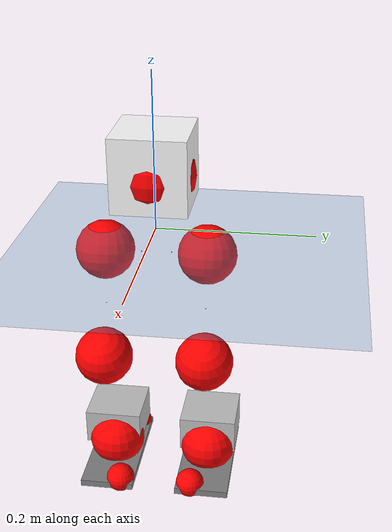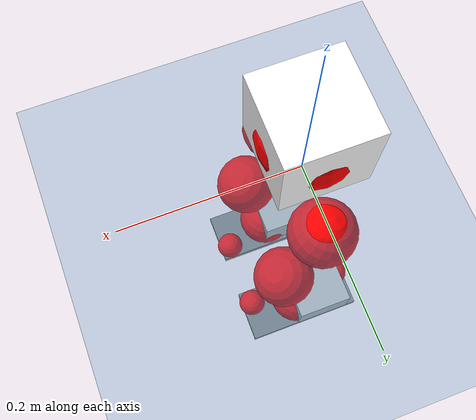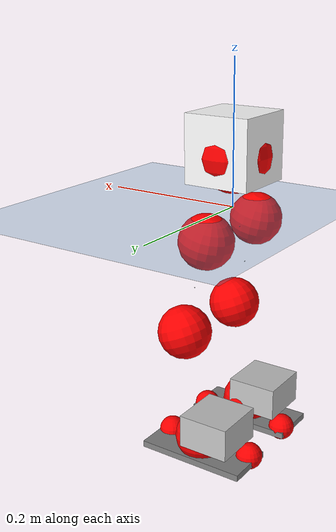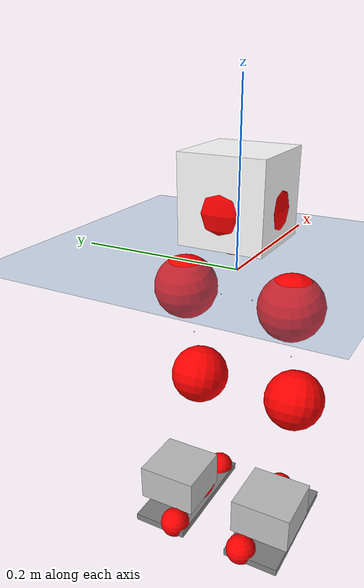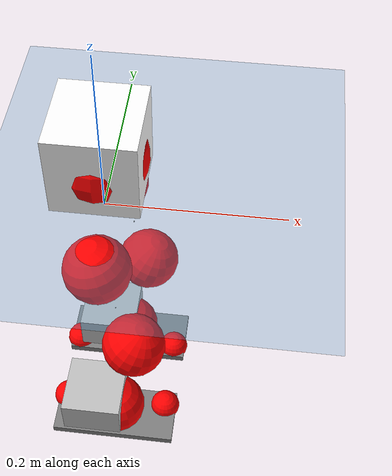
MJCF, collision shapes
<mujoco model="pi_12dof_release_v1">
  <compiler angle="radian" assetdir="assets" balanceinertia="true" inertiafromgeom="false"/>

  <option timestep="0.005" density="1.2" viscosity="2e-05"/>

  <size nkey="1"/>

  <visual>
    <quality shadowsize="8192"/>
    <map shadowclip="0.5"/>
  </visual>

  <default>
    <default class="/">
      <joint armature="0.01" damping="0.01" frictionloss="0.01"/>
      <geom contype="0" conaffinity="0" group="1" solref="-1000 -80"/>
      <site size="0.01 0.005 0.005" group="5"/>
      <general forcelimited="true" biastype="affine" gainprm="20" biasprm="0 -20 -0.5"/>
      <default class="foot">
        <geom size="0.0845 0.036 0.005" type="box" condim="6" group="4" priority="1" friction="0.9 0.2 0.2" solimp="0.015 1 0.005"/>
      </default>
      <default class="reward_collision_sphere">
        <geom group="5" rgba="1 0 0 1"/>
      </default>
    </default>
  </default>

  <asset>
    <texture type="skybox" colorspace="auto" name="//unnamed_texture_0" builtin="gradient" rgb1="0.95 0.95 0.95" rgb2="0.95 0.95 0.95" width="100" height="600"/>
    <texture type="2d" colorspace="auto" name="texplane" builtin="checker" rgb1="0.345 0.575 0.748" rgb2="0.345 0.575 0.748" markrgb="1 1 1" width="512" height="512"/>
    <material name="MatPlane" class="/" texture="texplane" texuniform="true" texrepeat="2 2" specular="0.9"/>
    <mesh name="baselink_1" class="/" file="baselink_1.STL"/>
    <mesh name="r_hip_pitch_link" class="/" file="r_hip_pitch_link.STL"/>
    <mesh name="r_hip_roll_link" class="/" file="r_hip_roll_link.STL"/>
    <mesh name="r_thigh_link" class="/" file="r_thigh_link.STL"/>
    <mesh name="r_calf_link" class="/" file="r_calf_link.STL"/>
    <mesh name="r_ankle_pitch_link" class="/" file="r_ankle_pitch_link.STL"/>
    <mesh name="r_ankle_roll_link" class="/" file="r_ankle_roll_link.STL"/>
    <mesh name="l_hip_pitch_link" class="/" file="l_hip_pitch_link.STL"/>
    <mesh name="l_hip_roll_link" class="/" file="l_hip_roll_link.STL"/>
    <mesh name="l_thigh_link" class="/" file="l_thigh_link.STL"/>
    <mesh name="l_calf_link" class="/" file="l_calf_link.STL"/>
    <mesh name="l_ankle_pitch_link" class="/" file="l_ankle_pitch_link.STL"/>
    <mesh name="l_ankle_roll_link" class="/" file="l_ankle_roll_link.STL"/>
  </asset>

  <worldbody>
    <geom name="floor" class="/" size="100 100 0.125" type="plane" group="0" material="MatPlane"/>
    <light name="toplight_shadow" class="/" pos="0 0 5" dir="0.0990148 0.0990148 -0.990148" type="directional" ambient="0.04 0.04 0.04" diffuse="0.55 0.55 0.55" specular="0.12 0.12 0.12"/>
    <light name="toplight_fill" class="/" pos="0 0 5" dir="0.0990148 0.0990148 -0.990148" type="directional" castshadow="false" ambient="0.04 0.04 0.04" diffuse="0.3 0.3 0.3" specular="0.08 0.08 0.08"/>
    <body name="trunk" pos="-0.000263999 -7.95426e-05 0.00086207" quat="1 1.51024e-05 5.93516e-05 -5.45821e-06">
      <inertial pos="0.00293003 -0.000625057 0.0408341" quat="0.695366 0.00966156 0.00993008 0.718522" mass="1.8266" diaginertia="0.00873468 0.00382695 0.0046712"/>
      <joint name="//unnamed_joint_0" type="free"/>
      <geom name="//unnamed_geom_1" class="/" type="mesh" density="0" rgba="1 1 1 1" mesh="baselink_1"/>
      <geom name="//unnamed_geom_2" class="/" size="0.047431 0.047431 0.047431" pos="0 0 0.0818797" type="box" rgba="1 1 1 1"/>
      <geom name="//unnamed_geom_3" class="reward_collision_sphere" size="0.0521741" pos="0 0 0.0716448"/>
      <site name="imu" class="/" pos="-0.00253793 -0.000497544 -0.00134038" size="0.00948619"/>
      <camera name="track" class="/" pos="0 -1.68598 0" quat="0.707107 0.707107 0 0" mode="trackcom"/>
      <camera name="ego_camera" class="/" pos="0.0734527 0 0.184229" quat="-0.5 -0.5 0.5 0.5"/>
      <body name="r_hip_pitch_link" pos="0.00108886 -0.0194202 -0.0335978" quat="0.992165 -0.000134128 -0.124936 0.000176135">
        <inertial pos="0.00093752 -0.0464447 0.000176417" quat="-0.023154 0.706435 -0.0279005 0.706849" mass="0.31649" diaginertia="9.78306e-05 4.16984e-05 9.36322e-05"/>
        <joint name="r_hip_pitch_joint" class="/" pos="0 0 0" axis="0.00115874 -0.999999 0.000396035" range="-1.74783 1.24786" armature="0.00958998" damping="0.00436065" frictionloss="0.00944109"/>
        <geom name="//unnamed_geom_4" class="/" type="mesh" density="0" rgba="0.75294 0.75294 0.75294 1" mesh="r_hip_pitch_link"/>
        <geom name="//unnamed_geom_5" class="/" size="0.00047431 0.00047431 0.00047431" type="box" rgba="0.75294 0.75294 0.75294 1"/>
        <body name="r_hip_roll_link" pos="0.000343739 -0.0463865 0.000432416" quat="1 -3.19574e-05 9.58945e-06 3.15437e-05">
          <inertial pos="-0.00179367 1.09369e-05 -0.0632603" quat="0.704692 -0.079867 -0.0818559 0.700236" mass="0.326862" diaginertia="0.000300292 0.000117905 0.000143091"/>
          <joint name="r_hip_roll_joint" class="/" pos="0 0 0" axis="-0.999997 0.00240541 -0.000708457" range="-0.116952 0.499637" armature="0.0096225" damping="0.00925468" frictionloss="0.00910624"/>
          <geom name="//unnamed_geom_6" class="/" type="mesh" density="0" rgba="0.75294 0.75294 0.75294 1" mesh="r_hip_roll_link"/>
          <geom name="//unnamed_geom_7" class="/" size="0.00047431 0.00047431 0.00047431" type="box" rgba="0.75294 0.75294 0.75294 1"/>
          <geom name="//unnamed_geom_8" class="reward_collision_sphere" size="0.0379448"/>
          <body name="r_thigh_link" pos="-0.00102815 0.00123436 -0.0707951" quat="1 0.000141665 -8.93526e-06 -0.000100328">
            <inertial pos="0.00013542 0.000949581 -0.0491262" quat="0.7378 0.675016 0.000664602 -0.00204617" mass="0.0972432" diaginertia="0.000113626 4.03939e-05 6.52671e-05"/>
            <joint name="r_thigh_joint" class="/" pos="0 0 0" axis="0.00270242 0.0013201 -0.999995" range="-0.301231 0.600293" armature="0.00965197" damping="0.00452373" frictionloss="0.00961451"/>
            <geom name="//unnamed_geom_9" class="/" type="mesh" density="0" rgba="0.75294 0.75294 0.75294 1" mesh="r_thigh_link"/>
            <geom name="//unnamed_geom_10" class="/" size="0.00047431 0.00047431 0.00047431" type="box" rgba="0.75294 0.75294 0.75294 1"/>
            <body name="r_calf_link" pos="0.000458834 -0.00229457 -0.0722226" quat="0.947641 -0.000168714 0.319338 0.000142718">
              <inertial pos="-0.000720964 -0.000741444 -0.0716967" quat="0.999985 -0.00222173 -0.000223455 0.00491384" mass="0.682979" diaginertia="0.00315308 0.00145875 0.000193854"/>
              <joint name="r_calf_joint" class="/" pos="0 0 0" axis="-0.00255152 -0.999993 0.00277586" range="-1.64437 0.632111" armature="0.00991403" damping="0.00364816" frictionloss="0.00976797"/>
              <geom name="//unnamed_geom_11" class="/" type="mesh" density="0" rgba="0.75294 0.75294 0.75294 1" mesh="r_calf_link"/>
              <geom name="//unnamed_geom_12" class="/" size="0.00047431 0.00047431 0.00047431" type="box" rgba="0.75294 0.75294 0.75294 1"/>
              <geom name="//unnamed_geom_13" class="reward_collision_sphere" size="0.0379448"/>
              <body name="r_ankle_pitch_link" pos="0.000559885 0.00166585 -0.142712" quat="0.98006 5.42592e-05 -0.198704 -6.22262e-05">
                <inertial pos="0.00476347 0.00324681 1.9367e-05" quat="0.00308317 0.706813 -0.00381591 0.707384" mass="0.151344" diaginertia="0.000278899 9.42398e-05 0.000134951"/>
                <joint name="r_ankle_pitch_joint" class="/" pos="0 0 0" axis="-0.000386669 -1 0.000129965" stiffness="0.00116116" range="-1.30774 0.510083" armature="0.00931542" damping="0.00507382" frictionloss="0.00951128"/>
                <geom name="//unnamed_geom_14" class="/" type="mesh" density="0" rgba="0.75294 0.75294 0.75294 1" mesh="r_ankle_pitch_link"/>
                <geom name="//unnamed_geom_15" class="/" size="0.0369962 0.0379448 0.0237155" type="box" rgba="0.75294 0.75294 0.75294 1"/>
                <body name="r_ankle_roll_link" pos="0.0742379 0.00302732 -0.000214348" quat="1 -8.39017e-05 -4.77884e-05 -8.26259e-05">
                  <inertial pos="-0.0231673 9.25871e-07 -0.0150073" quat="0.55953 0.433616 0.435153 0.556368" mass="0.441175" diaginertia="0.00101356 0.000442029 0.000316846"/>
                  <joint name="r_ankle_roll_joint" class="/" pos="0 0 0" axis="-1 -0.00023248 -0.000940941" range="-0.133366 0.145781" armature="0.00944043" damping="0.00376789" frictionloss="0.00930278"/>
                  <geom name="//unnamed_geom_16" class="/" type="mesh" density="0" rgba="0.75294 0.75294 0.75294 1" mesh="r_ankle_roll_link"/>
                  <geom name="//unnamed_geom_17" class="/" type="mesh" rgba="0.75294 0.75294 0.75294 1" mesh="r_ankle_roll_link"/>
                  <geom name="right_foot" class="foot" size="0.0789996 0.0353371 0.00458962" pos="-0.0499478 0 -0.0450339"/>
                  <geom name="//unnamed_geom_19" class="reward_collision_sphere" size="0.0379448" pos="-0.0489685 0 -0.0204699"/>
                  <geom name="//unnamed_geom_20" class="reward_collision_sphere" size="0.0189724" pos="0.0146905 0.0168598 -0.0409399"/>
                  <geom name="//unnamed_geom_21" class="reward_collision_sphere" size="0.0189724" pos="-0.117524 0.0168598 -0.0409399"/>
                  <site name="right_foot" class="foot" pos="-0.0499478 0 -0.0450339" size="0.00948619"/>
                </body>
              </body>
            </body>
          </body>
        </body>
      </body>
      <body name="l_hip_pitch_link" pos="-0.000221602 0.0190738 -0.0332477" quat="0.992182 -5.88921e-05 -0.124796 -9.31989e-05">
        <inertial pos="0.000274647 0.0450989 -0.000243317" quat="-0.0362719 0.707643 0.0317897 0.704922" mass="0.331212" diaginertia="0.000116117 4.51729e-05 0.000114115"/>
        <joint name="l_hip_pitch_joint" class="/" pos="0 0 0" axis="-0.00447004 0.999985 0.00326624" range="-1.24216 1.76324" armature="0.00957731" damping="0.00516736" frictionloss="0.00930722"/>
        <geom name="//unnamed_geom_22" class="/" type="mesh" density="0" rgba="0.75294 0.75294 0.75294 1" mesh="l_hip_pitch_link"/>
        <geom name="//unnamed_geom_23" class="/" size="0.00047431 0.00047431 0.00047431" type="box" rgba="0.75294 0.75294 0.75294 1"/>
        <body name="l_hip_roll_link" pos="0.0012247 0.0463825 7.2734e-05" quat="1 -1.46501e-05 -6.48775e-05 -4.20815e-05">
          <inertial pos="-0.00129396 -0.000656691 -0.0631199" quat="0.698496 -0.0747992 -0.0771766 0.707497" mass="0.33138" diaginertia="0.000300343 0.000119367 0.000144803"/>
          <joint name="l_hip_roll_joint" class="/" pos="0 0 0" axis="-0.999995 0.00100746 -0.00307406" range="-0.491715 0.0990353" armature="0.00957691" damping="0.00844374" frictionloss="0.00961258"/>
          <geom name="//unnamed_geom_24" class="/" type="mesh" density="0" rgba="0.75294 0.75294 0.75294 1" mesh="l_hip_roll_link"/>
          <geom name="//unnamed_geom_25" class="/" size="0.00047431 0.00047431 0.00047431" type="box" rgba="0.75294 0.75294 0.75294 1"/>
          <geom name="//unnamed_geom_26" class="reward_collision_sphere" size="0.0379448"/>
          <body name="l_thigh_link" pos="0.00101485 6.23836e-05 -0.0706702" quat="1 -0.000100299 -3.93142e-05 -6.34075e-05">
            <inertial pos="0.000442418 -0.0017715 -0.0482942" quat="0.676247 0.736665 -0.0038984 -2.81903e-05" mass="0.0961058" diaginertia="0.000112059 4.02361e-05 6.45385e-05"/>
            <joint name="l_thigh_joint" class="/" pos="0 0 0" axis="0.00021964 -0.000855962 -1" stiffness="0.000276551" range="-0.583476 0.281234" armature="0.00910552" damping="0.00368882" frictionloss="0.00906917"/>
            <geom name="//unnamed_geom_27" class="/" type="mesh" density="0" rgba="0.75294 0.75294 0.75294 1" mesh="l_thigh_link"/>
            <geom name="//unnamed_geom_28" class="/" size="0.00047431 0.00047431 0.00047431" type="box" rgba="0.75294 0.75294 0.75294 1"/>
            <body name="l_calf_link" pos="-0.00104561 0.000287956 -0.0716623" quat="0.947744 3.18167e-05 0.319033 -0.000147823">
              <inertial pos="0.000233712 0.00236792 -0.072475" quat="0.999992 0.00255705 0.000627211 0.00286416" mass="0.700436" diaginertia="0.0031949 0.00150011 0.000196826"/>
              <joint name="l_calf_joint" class="/" pos="0 0 0" axis="0.00166961 0.999998 0.00120534" stiffness="0.00410011" range="-0.649442 1.63632" armature="0.00968482" damping="0.0078973" frictionloss="0.00959229"/>
              <geom name="//unnamed_geom_29" class="/" type="mesh" density="0" rgba="0.75294 0.75294 0.75294 1" mesh="l_calf_link"/>
              <geom name="//unnamed_geom_30" class="/" size="0.00047431 0.00047431 0.00047431" type="box" rgba="0.75294 0.75294 0.75294 1"/>
              <geom name="//unnamed_geom_31" class="reward_collision_sphere" size="0.0379448"/>
              <body name="l_ankle_pitch_link" pos="0.000945236 0.00147278 -0.143306" quat="0.980074 -6.56085e-06 -0.198632 -0.000182995">
                <inertial pos="0.00397751 -0.00128631 7.70891e-05" quat="-0.00219069 0.707057 0.00230687 0.707149" mass="0.148213" diaginertia="0.000276194 9.35539e-05 0.00013417"/>
                <joint name="l_ankle_pitch_joint" class="/" pos="0 0 0" axis="-0.00197911 0.999993 -0.003219" stiffness="4.88825e-05" range="-0.50743 1.30768" armature="0.00948069" damping="0.00705914" frictionloss="0.00989699"/>
                <geom name="//unnamed_geom_32" class="/" type="mesh" density="0" rgba="0.75294 0.75294 0.75294 1" mesh="l_ankle_pitch_link"/>
                <geom name="//unnamed_geom_33" class="/" size="0.0369962 0.0379448 0.0237155" type="box" rgba="0.75294 0.75294 0.75294 1"/>
                <body name="l_ankle_roll_link" pos="0.0742443 -0.000160302 0.000189307" quat="1 0.000243688 0.000262154 -5.41785e-05">
                  <inertial pos="-0.0234969 -0.000408736 -0.0148774" quat="0.559528 0.429671 0.433203 0.560934" mass="0.4407" diaginertia="0.00102583 0.000434437 0.000316624"/>
                  <joint name="l_ankle_roll_joint" class="/" pos="0 0 0" axis="-0.999999 -0.00110188 0.000549818" range="-0.154424 0.152658" armature="0.00937255" damping="0.00786286" frictionloss="0.00935294"/>
                  <geom name="//unnamed_geom_34" class="/" type="mesh" density="0" rgba="0.75294 0.75294 0.75294 1" mesh="l_ankle_roll_link"/>
                  <geom name="//unnamed_geom_35" class="/" type="mesh" rgba="0.75294 0.75294 0.75294 1" mesh="l_ankle_roll_link"/>
                  <geom name="left_foot" class="foot" size="0.0797616 0.0355891 0.00465656" pos="-0.0499478 0 -0.0450339"/>
                  <geom name="//unnamed_geom_37" class="reward_collision_sphere" size="0.0379448" pos="-0.0489685 0 -0.0204699"/>
                  <geom name="//unnamed_geom_38" class="reward_collision_sphere" size="0.0189724" pos="0.0146905 -0.0168598 -0.0409399"/>
                  <geom name="//unnamed_geom_39" class="reward_collision_sphere" size="0.0189724" pos="-0.117524 -0.0168598 -0.0409399"/>
                  <site name="left_foot" class="foot" pos="-0.0499478 0 -0.0450339" size="0.00948619"/>
                </body>
              </body>
            </body>
          </body>
        </body>
      </body>
    </body>
  </worldbody>

  <contact>
    <pair class="/" geom1="floor" geom2="right_foot" name="//unnamed_contact_1"/>
    <pair class="/" geom1="floor" geom2="left_foot" name="//unnamed_contact_0"/>
  </contact>

  <actuator>
    <general name="r_hip_pitch_joint" class="/" joint="r_hip_pitch_joint" forcerange="-19.9742 19.9742" gainprm="19.0038" biasprm="0 -19.0038 -0.47816"/>
    <general name="r_hip_roll_joint" class="/" joint="r_hip_roll_joint" forcerange="-20.3181 20.3181" gainprm="19.0038" biasprm="0 -19.0038 -0.47816"/>
    <general name="r_thigh_joint" class="/" joint="r_thigh_joint" forcerange="-19.3972 19.3972" gainprm="19.0038" biasprm="0 -19.0038 -0.47816"/>
    <general name="r_calf_joint" class="/" joint="r_calf_joint" forcerange="-19.7791 19.7791" gainprm="19.0038" biasprm="0 -19.0038 -0.47816"/>
    <general name="r_ankle_pitch_joint" class="/" joint="r_ankle_pitch_joint" forcerange="-20.2974 20.2974" gainprm="19.0038" biasprm="0 -19.0038 -0.47816"/>
    <general name="r_ankle_roll_joint" class="/" joint="r_ankle_roll_joint" forcerange="-19.8285 19.8285" gainprm="19.0038" biasprm="0 -19.0038 -0.47816"/>
    <general name="l_hip_pitch_joint" class="/" joint="l_hip_pitch_joint" forcerange="-19.8238 19.8238" gainprm="19.0038" biasprm="0 -19.0038 -0.47816"/>
    <general name="l_hip_roll_joint" class="/" joint="l_hip_roll_joint" forcerange="-20.518 20.518" gainprm="19.0038" biasprm="0 -19.0038 -0.47816"/>
    <general name="l_thigh_joint" class="/" joint="l_thigh_joint" forcerange="-19.568 19.568" gainprm="19.0038" biasprm="0 -19.0038 -0.47816"/>
    <general name="l_calf_joint" class="/" joint="l_calf_joint" forcerange="-20.5607 20.5607" gainprm="19.0038" biasprm="0 -19.0038 -0.47816"/>
    <general name="l_ankle_pitch_joint" class="/" joint="l_ankle_pitch_joint" forcerange="-19.585 19.585" gainprm="19.0038" biasprm="0 -19.0038 -0.47816"/>
    <general name="l_ankle_roll_joint" class="/" joint="l_ankle_roll_joint" forcerange="-20.1408 20.1408" gainprm="19.0038" biasprm="0 -19.0038 -0.47816"/>
  </actuator>

  <sensor>
    <gyro site="imu" name="imu_angular_velocity"/>
    <velocimeter site="imu" name="imu_linear_velocity"/>
    <framelinvel objtype="site" objname="left_foot" name="left_foot_global_linear_velocity"/>
    <framelinvel objtype="site" objname="right_foot" name="right_foot_global_linear_velocity"/>
  </sensor>

  <keyframe>
    <key name="home" qpos="0 0 0.291 1 0 0 0 0.4 0 0 -0.8 0.4 0 -0.4 0 0 0.8 -0.4 0"/>
  </keyframe>
</mujoco>
